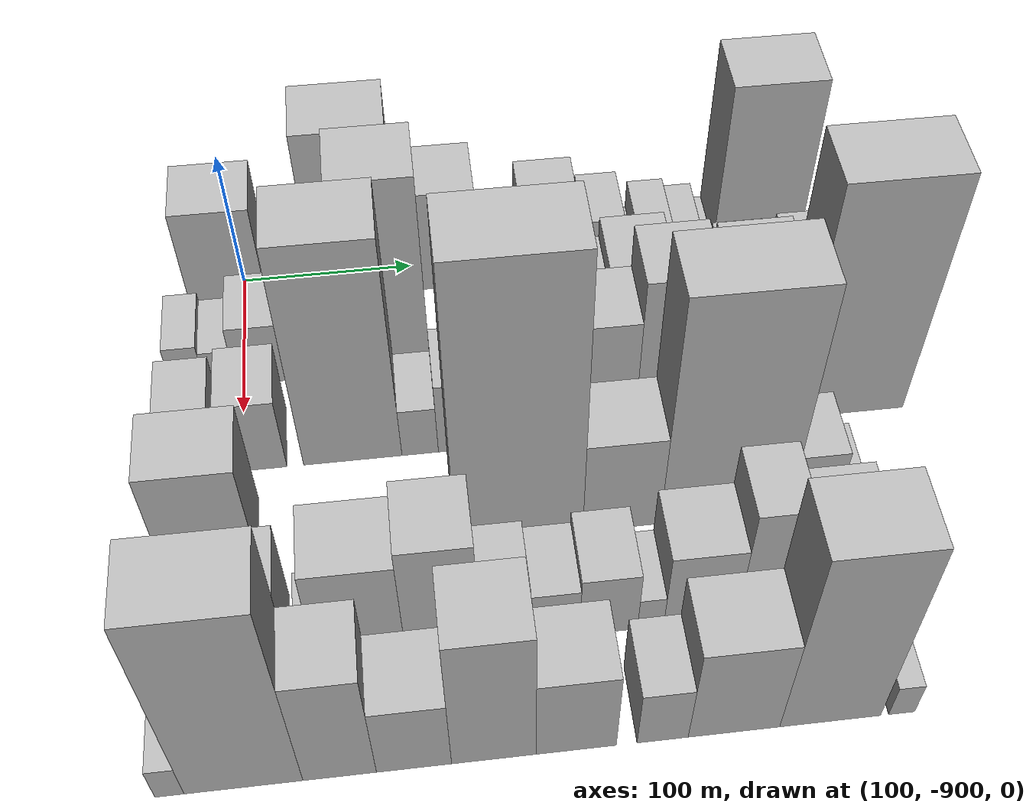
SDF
<sdf version="1.6">
 <world name="default">
  <model name="building_1">
   <static>1</static>
   <pose>100.0000 -908.6700 0 0.000000 0.000000 0.000000</pose>
   <link name="link">
    <pose>0 0 39.00 0 0 0</pose>
    <collision name="collision"><geometry><box><size>40.0000 44.6600 78.0000</size></box></geometry></collision>
    <visual name="visual">
     <cast_shadows>0</cast_shadows>
     <geometry><box><size>40.0000 44.6600 78.0000</size></box></geometry>
     <material>
      <script>
       <uri>model://HANNAS_wall/materials/scripts</uri>
       <uri>model://HANNAS_wall/materials/textures</uri>
       <name>vrc/HANNAS_wall</name>
      </script>
     </material>
    </visual>
   </link>
  </model>
  <model name="building_2">
   <static>1</static>
   <pose>100.0000 -875.1208 0 0.000000 0.000000 0.000000</pose>
   <link name="link">
    <pose>0 0 21.00 0 0 0</pose>
    <collision name="collision"><geometry><box><size>40.0000 22.4383 42.0000</size></box></geometry></collision>
    <visual name="visual">
     <cast_shadows>0</cast_shadows>
     <geometry><box><size>40.0000 22.4383 42.0000</size></box></geometry>
     <material>
      <script>
       <uri>model://HANNAS_wall/materials/scripts</uri>
       <uri>model://HANNAS_wall/materials/textures</uri>
       <name>vrc/HANNAS_wall</name>
      </script>
     </material>
    </visual>
   </link>
  </model>
  <model name="building_3">
   <static>1</static>
   <pose>100.0000 -832.2867 0 0.000000 0.000000 0.000000</pose>
   <link name="link">
    <pose>0 0 64.50 0 0 0</pose>
    <collision name="collision"><geometry><box><size>40.0000 51.2298 129.0000</size></box></geometry></collision>
    <visual name="visual">
     <cast_shadows>0</cast_shadows>
     <geometry><box><size>40.0000 51.2298 129.0000</size></box></geometry>
     <material>
      <script>
       <uri>model://HANNAS_wall/materials/scripts</uri>
       <uri>model://HANNAS_wall/materials/textures</uri>
       <name>vrc/HANNAS_wall</name>
      </script>
     </material>
    </visual>
   </link>
  </model>
  <model name="building_4">
   <static>1</static>
   <pose>100.0000 -783.7471 0 0.000000 0.000000 0.000000</pose>
   <link name="link">
    <pose>0 0 39.00 0 0 0</pose>
    <collision name="collision"><geometry><box><size>40.0000 45.8494 78.0000</size></box></geometry></collision>
    <visual name="visual">
     <cast_shadows>0</cast_shadows>
     <geometry><box><size>40.0000 45.8494 78.0000</size></box></geometry>
     <material>
      <script>
       <uri>model://HANNAS_wall/materials/scripts</uri>
       <uri>model://HANNAS_wall/materials/textures</uri>
       <name>vrc/HANNAS_wall</name>
      </script>
     </material>
    </visual>
   </link>
  </model>
  <model name="building_5">
   <static>1</static>
   <pose>100.0000 -748.8958 0 0.000000 0.000000 0.000000</pose>
   <link name="link">
    <pose>0 0 13.50 0 0 0</pose>
    <collision name="collision"><geometry><box><size>40.0000 11.8532 27.0000</size></box></geometry></collision>
    <visual name="visual">
     <cast_shadows>0</cast_shadows>
     <geometry><box><size>40.0000 11.8532 27.0000</size></box></geometry>
     <material>
      <script>
       <uri>model://HANNAS_wall/materials/scripts</uri>
       <uri>model://HANNAS_wall/materials/textures</uri>
       <name>vrc/HANNAS_wall</name>
      </script>
     </material>
    </visual>
   </link>
  </model>
  <model name="building_6">
   <static>1</static>
   <pose>100.0000 -738.8473 0 0.000000 0.000000 0.000000</pose>
   <link name="link">
    <pose>0 0 9.00 0 0 0</pose>
    <collision name="collision"><geometry><box><size>40.0000 8.2439 18.0000</size></box></geometry></collision>
    <visual name="visual">
     <cast_shadows>0</cast_shadows>
     <geometry><box><size>40.0000 8.2439 18.0000</size></box></geometry>
     <material>
      <script>
       <uri>model://HANNAS_wall/materials/scripts</uri>
       <uri>model://HANNAS_wall/materials/textures</uri>
       <name>vrc/HANNAS_wall</name>
      </script>
     </material>
    </visual>
   </link>
  </model>
  <model name="building_7">
   <static>1</static>
   <pose>100.0000 -717.7054 0 0.000000 0.000000 0.000000</pose>
   <link name="link">
    <pose>0 0 30.00 0 0 0</pose>
    <collision name="collision"><geometry><box><size>40.0000 34.0398 60.0000</size></box></geometry></collision>
    <visual name="visual">
     <cast_shadows>0</cast_shadows>
     <geometry><box><size>40.0000 34.0398 60.0000</size></box></geometry>
     <material>
      <script>
       <uri>model://HANNAS_wall/materials/scripts</uri>
       <uri>model://HANNAS_wall/materials/textures</uri>
       <name>vrc/HANNAS_wall</name>
      </script>
     </material>
    </visual>
   </link>
  </model>
  <model name="building_8">
   <static>1</static>
   <pose>100.0000 -685.4181 0 0.000000 0.000000 0.000000</pose>
   <link name="link">
    <pose>0 0 22.50 0 0 0</pose>
    <collision name="collision"><geometry><box><size>40.0000 24.5348 45.0000</size></box></geometry></collision>
    <visual name="visual">
     <cast_shadows>0</cast_shadows>
     <geometry><box><size>40.0000 24.5348 45.0000</size></box></geometry>
     <material>
      <script>
       <uri>model://HANNAS_wall/materials/scripts</uri>
       <uri>model://HANNAS_wall/materials/textures</uri>
       <name>vrc/HANNAS_wall</name>
      </script>
     </material>
    </visual>
   </link>
  </model>
  <model name="building_9">
   <static>1</static>
   <pose>100.0000 -669.4038 0 0.000000 0.000000 0.000000</pose>
   <link name="link">
    <pose>0 0 7.50 0 0 0</pose>
    <collision name="collision"><geometry><box><size>40.0000 7.4939 15.0000</size></box></geometry></collision>
    <visual name="visual">
     <cast_shadows>0</cast_shadows>
     <geometry><box><size>40.0000 7.4939 15.0000</size></box></geometry>
     <material>
      <script>
       <uri>model://HANNAS_wall/materials/scripts</uri>
       <uri>model://HANNAS_wall/materials/textures</uri>
       <name>vrc/HANNAS_wall</name>
      </script>
     </material>
    </visual>
   </link>
  </model>
  <model name="building_10">
   <static>1</static>
   <pose>100.0000 -654.9815 0 0.000000 0.000000 0.000000</pose>
   <link name="link">
    <pose>0 0 18.00 0 0 0</pose>
    <collision name="collision"><geometry><box><size>40.0000 21.3506 36.0000</size></box></geometry></collision>
    <visual name="visual">
     <cast_shadows>0</cast_shadows>
     <geometry><box><size>40.0000 21.3506 36.0000</size></box></geometry>
     <material>
      <script>
       <uri>model://HANNAS_wall/materials/scripts</uri>
       <uri>model://HANNAS_wall/materials/textures</uri>
       <name>vrc/HANNAS_wall</name>
      </script>
     </material>
    </visual>
   </link>
  </model>
  <model name="building_11">
   <static>1</static>
   <pose>100.0000 -635.4280 0 0.000000 0.000000 0.000000</pose>
   <link name="link">
    <pose>0 0 15.00 0 0 0</pose>
    <collision name="collision"><geometry><box><size>40.0000 17.7566 30.0000</size></box></geometry></collision>
    <visual name="visual">
     <cast_shadows>0</cast_shadows>
     <geometry><box><size>40.0000 17.7566 30.0000</size></box></geometry>
     <material>
      <script>
       <uri>model://HANNAS_wall/materials/scripts</uri>
       <uri>model://HANNAS_wall/materials/textures</uri>
       <name>vrc/HANNAS_wall</name>
      </script>
     </material>
    </visual>
   </link>
  </model>
  <model name="building_12">
   <static>1</static>
   <pose>100.0000 -622.7166 0 0.000000 0.000000 0.000000</pose>
   <link name="link">
    <pose>0 0 9.00 0 0 0</pose>
    <collision name="collision"><geometry><box><size>40.0000 7.6661 18.0000</size></box></geometry></collision>
    <visual name="visual">
     <cast_shadows>0</cast_shadows>
     <geometry><box><size>40.0000 7.6661 18.0000</size></box></geometry>
     <material>
      <script>
       <uri>model://HANNAS_wall/materials/scripts</uri>
       <uri>model://HANNAS_wall/materials/textures</uri>
       <name>vrc/HANNAS_wall</name>
      </script>
     </material>
    </visual>
   </link>
  </model>
  <model name="building_13">
   <static>1</static>
   <pose>100.0000 -592.4137 0 0.000000 0.000000 0.000000</pose>
   <link name="link">
    <pose>0 0 69.00 0 0 0</pose>
    <collision name="collision"><geometry><box><size>40.0000 52.9396 138.0000</size></box></geometry></collision>
    <visual name="visual">
     <cast_shadows>0</cast_shadows>
     <geometry><box><size>40.0000 52.9396 138.0000</size></box></geometry>
     <material>
      <script>
       <uri>model://HANNAS_wall/materials/scripts</uri>
       <uri>model://HANNAS_wall/materials/textures</uri>
       <name>vrc/HANNAS_wall</name>
      </script>
     </material>
    </visual>
   </link>
  </model>
  <model name="building_57">
   <static>1</static>
   <pose>160.0000 -930.6669 0 0.000000 0.000000 0.000000</pose>
   <link name="link">
    <pose>0 0 18.00 0 0 0</pose>
    <collision name="collision"><geometry><box><size>40.0000 18.6662 36.0000</size></box></geometry></collision>
    <visual name="visual">
     <cast_shadows>0</cast_shadows>
     <geometry><box><size>40.0000 18.6662 36.0000</size></box></geometry>
     <material>
      <script>
       <uri>model://HANNAS_wall/materials/scripts</uri>
       <uri>model://HANNAS_wall/materials/textures</uri>
       <name>vrc/HANNAS_wall</name>
      </script>
     </material>
    </visual>
   </link>
  </model>
  <model name="building_58">
   <static>1</static>
   <pose>160.0000 -912.6948 0 0.000000 0.000000 0.000000</pose>
   <link name="link">
    <pose>0 0 15.00 0 0 0</pose>
    <collision name="collision"><geometry><box><size>40.0000 17.2780 30.0000</size></box></geometry></collision>
    <visual name="visual">
     <cast_shadows>0</cast_shadows>
     <geometry><box><size>40.0000 17.2780 30.0000</size></box></geometry>
     <material>
      <script>
       <uri>model://HANNAS_wall/materials/scripts</uri>
       <uri>model://HANNAS_wall/materials/textures</uri>
       <name>vrc/HANNAS_wall</name>
      </script>
     </material>
    </visual>
   </link>
  </model>
  <model name="building_59">
   <static>1</static>
   <pose>160.0000 -889.8116 0 0.000000 0.000000 0.000000</pose>
   <link name="link">
    <pose>0 0 24.00 0 0 0</pose>
    <collision name="collision"><geometry><box><size>40.0000 28.4884 48.0000</size></box></geometry></collision>
    <visual name="visual">
     <cast_shadows>0</cast_shadows>
     <geometry><box><size>40.0000 28.4884 48.0000</size></box></geometry>
     <material>
      <script>
       <uri>model://HANNAS_wall/materials/scripts</uri>
       <uri>model://HANNAS_wall/materials/textures</uri>
       <name>vrc/HANNAS_wall</name>
      </script>
     </material>
    </visual>
   </link>
  </model>
  <model name="building_60">
   <static>1</static>
   <pose>160.0000 -862.2313 0 0.000000 0.000000 0.000000</pose>
   <link name="link">
    <pose>0 0 22.50 0 0 0</pose>
    <collision name="collision"><geometry><box><size>40.0000 26.6723 45.0000</size></box></geometry></collision>
    <visual name="visual">
     <cast_shadows>0</cast_shadows>
     <geometry><box><size>40.0000 26.6723 45.0000</size></box></geometry>
     <material>
      <script>
       <uri>model://HANNAS_wall/materials/scripts</uri>
       <uri>model://HANNAS_wall/materials/textures</uri>
       <name>vrc/HANNAS_wall</name>
      </script>
     </material>
    </visual>
   </link>
  </model>
  <model name="building_61">
   <static>1</static>
   <pose>160.0000 -816.3578 0 0.000000 0.000000 0.000000</pose>
   <link name="link">
    <pose>0 0 75.00 0 0 0</pose>
    <collision name="collision"><geometry><box><size>40.0000 45.0746 150.0000</size></box></geometry></collision>
    <visual name="visual">
     <cast_shadows>0</cast_shadows>
     <geometry><box><size>40.0000 45.0746 150.0000</size></box></geometry>
     <material>
      <script>
       <uri>model://HANNAS_wall/materials/scripts</uri>
       <uri>model://HANNAS_wall/materials/textures</uri>
       <name>vrc/HANNAS_wall</name>
      </script>
     </material>
    </visual>
   </link>
  </model>
  <model name="building_62">
   <static>1</static>
   <pose>160.0000 -708.0159 0 0.000000 0.000000 0.000000</pose>
   <link name="link">
    <pose>0 0 27.00 0 0 0</pose>
    <collision name="collision"><geometry><box><size>40.0000 31.2031 54.0000</size></box></geometry></collision>
    <visual name="visual">
     <cast_shadows>0</cast_shadows>
     <geometry><box><size>40.0000 31.2031 54.0000</size></box></geometry>
     <material>
      <script>
       <uri>model://HANNAS_wall/materials/scripts</uri>
       <uri>model://HANNAS_wall/materials/textures</uri>
       <name>vrc/HANNAS_wall</name>
      </script>
     </material>
    </visual>
   </link>
  </model>
  <model name="building_63">
   <static>1</static>
   <pose>160.0000 -674.2257 0 0.000000 0.000000 0.000000</pose>
   <link name="link">
    <pose>0 0 34.50 0 0 0</pose>
    <collision name="collision"><geometry><box><size>40.0000 36.3771 69.0000</size></box></geometry></collision>
    <visual name="visual">
     <cast_shadows>0</cast_shadows>
     <geometry><box><size>40.0000 36.3771 69.0000</size></box></geometry>
     <material>
      <script>
       <uri>model://HANNAS_wall/materials/scripts</uri>
       <uri>model://HANNAS_wall/materials/textures</uri>
       <name>vrc/HANNAS_wall</name>
      </script>
     </material>
    </visual>
   </link>
  </model>
  <model name="building_64">
   <static>1</static>
   <pose>160.0000 -641.6457 0 0.000000 0.000000 0.000000</pose>
   <link name="link">
    <pose>0 0 24.00 0 0 0</pose>
    <collision name="collision"><geometry><box><size>40.0000 28.7830 48.0000</size></box></geometry></collision>
    <visual name="visual">
     <cast_shadows>0</cast_shadows>
     <geometry><box><size>40.0000 28.7830 48.0000</size></box></geometry>
     <material>
      <script>
       <uri>model://HANNAS_wall/materials/scripts</uri>
       <uri>model://HANNAS_wall/materials/textures</uri>
       <name>vrc/HANNAS_wall</name>
      </script>
     </material>
    </visual>
   </link>
  </model>
  <model name="building_65">
   <static>1</static>
   <pose>160.0000 -612.8412 0 0.000000 0.000000 0.000000</pose>
   <link name="link">
    <pose>0 0 28.50 0 0 0</pose>
    <collision name="collision"><geometry><box><size>40.0000 28.8260 57.0000</size></box></geometry></collision>
    <visual name="visual">
     <cast_shadows>0</cast_shadows>
     <geometry><box><size>40.0000 28.8260 57.0000</size></box></geometry>
     <material>
      <script>
       <uri>model://HANNAS_wall/materials/scripts</uri>
       <uri>model://HANNAS_wall/materials/textures</uri>
       <name>vrc/HANNAS_wall</name>
      </script>
     </material>
    </visual>
   </link>
  </model>
  <model name="building_66">
   <static>1</static>
   <pose>160.0000 -574.5521 0 0.000000 0.000000 0.000000</pose>
   <link name="link">
    <pose>0 0 30.00 0 0 0</pose>
    <collision name="collision"><geometry><box><size>40.0000 31.7522 60.0000</size></box></geometry></collision>
    <visual name="visual">
     <cast_shadows>0</cast_shadows>
     <geometry><box><size>40.0000 31.7522 60.0000</size></box></geometry>
     <material>
      <script>
       <uri>model://HANNAS_wall/materials/scripts</uri>
       <uri>model://HANNAS_wall/materials/textures</uri>
       <name>vrc/HANNAS_wall</name>
      </script>
     </material>
    </visual>
   </link>
  </model>
  <model name="building_110">
   <static>1</static>
   <pose>220.0000 -925.8809 0 0.000000 0.000000 0.000000</pose>
   <link name="link">
    <pose>0 0 25.50 0 0 0</pose>
    <collision name="collision"><geometry><box><size>40.0000 28.2381 51.0000</size></box></geometry></collision>
    <visual name="visual">
     <cast_shadows>0</cast_shadows>
     <geometry><box><size>40.0000 28.2381 51.0000</size></box></geometry>
     <material>
      <script>
       <uri>model://HANNAS_wall/materials/scripts</uri>
       <uri>model://HANNAS_wall/materials/textures</uri>
       <name>vrc/HANNAS_wall</name>
      </script>
     </material>
    </visual>
   </link>
  </model>
  <model name="building_111">
   <static>1</static>
   <pose>220.0000 -892.1208 0 0.000000 0.000000 0.000000</pose>
   <link name="link">
    <pose>0 0 28.50 0 0 0</pose>
    <collision name="collision"><geometry><box><size>40.0000 31.2821 57.0000</size></box></geometry></collision>
    <visual name="visual">
     <cast_shadows>0</cast_shadows>
     <geometry><box><size>40.0000 31.2821 57.0000</size></box></geometry>
     <material>
      <script>
       <uri>model://HANNAS_wall/materials/scripts</uri>
       <uri>model://HANNAS_wall/materials/textures</uri>
       <name>vrc/HANNAS_wall</name>
      </script>
     </material>
    </visual>
   </link>
  </model>
  <model name="building_112">
   <static>1</static>
   <pose>220.0000 -840.7045 0 0.000000 0.000000 0.000000</pose>
   <link name="link">
    <pose>0 0 85.50 0 0 0</pose>
    <collision name="collision"><geometry><box><size>40.0000 53.5505 171.0000</size></box></geometry></collision>
    <visual name="visual">
     <cast_shadows>0</cast_shadows>
     <geometry><box><size>40.0000 53.5505 171.0000</size></box></geometry>
     <material>
      <script>
       <uri>model://HANNAS_wall/materials/scripts</uri>
       <uri>model://HANNAS_wall/materials/textures</uri>
       <name>vrc/HANNAS_wall</name>
      </script>
     </material>
    </visual>
   </link>
  </model>
  <model name="building_113">
   <static>1</static>
   <pose>220.0000 -803.9248 0 0.000000 0.000000 0.000000</pose>
   <link name="link">
    <pose>0 0 19.50 0 0 0</pose>
    <collision name="collision"><geometry><box><size>40.0000 20.0090 39.0000</size></box></geometry></collision>
    <visual name="visual">
     <cast_shadows>0</cast_shadows>
     <geometry><box><size>40.0000 20.0090 39.0000</size></box></geometry>
     <material>
      <script>
       <uri>model://HANNAS_wall/materials/scripts</uri>
       <uri>model://HANNAS_wall/materials/textures</uri>
       <name>vrc/HANNAS_wall</name>
      </script>
     </material>
    </visual>
   </link>
  </model>
  <model name="building_114">
   <static>1</static>
   <pose>220.0000 -777.6790 0 0.000000 0.000000 0.000000</pose>
   <link name="link">
    <pose>0 0 28.50 0 0 0</pose>
    <collision name="collision"><geometry><box><size>40.0000 32.4825 57.0000</size></box></geometry></collision>
    <visual name="visual">
     <cast_shadows>0</cast_shadows>
     <geometry><box><size>40.0000 32.4825 57.0000</size></box></geometry>
     <material>
      <script>
       <uri>model://HANNAS_wall/materials/scripts</uri>
       <uri>model://HANNAS_wall/materials/textures</uri>
       <name>vrc/HANNAS_wall</name>
      </script>
     </material>
    </visual>
   </link>
  </model>
  <model name="building_115">
   <static>1</static>
   <pose>220.0000 -746.5024 0 0.000000 0.000000 0.000000</pose>
   <link name="link">
    <pose>0 0 21.00 0 0 0</pose>
    <collision name="collision"><geometry><box><size>40.0000 23.8708 42.0000</size></box></geometry></collision>
    <visual name="visual">
     <cast_shadows>0</cast_shadows>
     <geometry><box><size>40.0000 23.8708 42.0000</size></box></geometry>
     <material>
      <script>
       <uri>model://HANNAS_wall/materials/scripts</uri>
       <uri>model://HANNAS_wall/materials/textures</uri>
       <name>vrc/HANNAS_wall</name>
      </script>
     </material>
    </visual>
   </link>
  </model>
  <model name="building_116">
   <static>1</static>
   <pose>220.0000 -729.7341 0 0.000000 0.000000 0.000000</pose>
   <link name="link">
    <pose>0 0 10.50 0 0 0</pose>
    <collision name="collision"><geometry><box><size>40.0000 9.6658 21.0000</size></box></geometry></collision>
    <visual name="visual">
     <cast_shadows>0</cast_shadows>
     <geometry><box><size>40.0000 9.6658 21.0000</size></box></geometry>
     <material>
      <script>
       <uri>model://HANNAS_wall/materials/scripts</uri>
       <uri>model://HANNAS_wall/materials/textures</uri>
       <name>vrc/HANNAS_wall</name>
      </script>
     </material>
    </visual>
   </link>
  </model>
  <model name="building_117">
   <static>1</static>
   <pose>220.0000 -721.8791 0 0.000000 0.000000 0.000000</pose>
   <link name="link">
    <pose>0 0 7.50 0 0 0</pose>
    <collision name="collision"><geometry><box><size>40.0000 6.0443 15.0000</size></box></geometry></collision>
    <visual name="visual">
     <cast_shadows>0</cast_shadows>
     <geometry><box><size>40.0000 6.0443 15.0000</size></box></geometry>
     <material>
      <script>
       <uri>model://HANNAS_wall/materials/scripts</uri>
       <uri>model://HANNAS_wall/materials/textures</uri>
       <name>vrc/HANNAS_wall</name>
      </script>
     </material>
    </visual>
   </link>
  </model>
  <model name="building_118">
   <static>1</static>
   <pose>220.0000 -702.1826 0 0.000000 0.000000 0.000000</pose>
   <link name="link">
    <pose>0 0 46.50 0 0 0</pose>
    <collision name="collision"><geometry><box><size>40.0000 33.3488 93.0000</size></box></geometry></collision>
    <visual name="visual">
     <cast_shadows>0</cast_shadows>
     <geometry><box><size>40.0000 33.3488 93.0000</size></box></geometry>
     <material>
      <script>
       <uri>model://HANNAS_wall/materials/scripts</uri>
       <uri>model://HANNAS_wall/materials/textures</uri>
       <name>vrc/HANNAS_wall</name>
      </script>
     </material>
    </visual>
   </link>
  </model>
  <model name="building_119">
   <static>1</static>
   <pose>220.0000 -666.2102 0 0.000000 0.000000 0.000000</pose>
   <link name="link">
    <pose>0 0 61.50 0 0 0</pose>
    <collision name="collision"><geometry><box><size>40.0000 38.5959 123.0000</size></box></geometry></collision>
    <visual name="visual">
     <cast_shadows>0</cast_shadows>
     <geometry><box><size>40.0000 38.5959 123.0000</size></box></geometry>
     <material>
      <script>
       <uri>model://HANNAS_wall/materials/scripts</uri>
       <uri>model://HANNAS_wall/materials/textures</uri>
       <name>vrc/HANNAS_wall</name>
      </script>
     </material>
    </visual>
   </link>
  </model>
  <model name="building_120">
   <static>1</static>
   <pose>220.0000 -623.3349 0 0.000000 0.000000 0.000000</pose>
   <link name="link">
    <pose>0 0 60.00 0 0 0</pose>
    <collision name="collision"><geometry><box><size>40.0000 39.1547 120.0000</size></box></geometry></collision>
    <visual name="visual">
     <cast_shadows>0</cast_shadows>
     <geometry><box><size>40.0000 39.1547 120.0000</size></box></geometry>
     <material>
      <script>
       <uri>model://HANNAS_wall/materials/scripts</uri>
       <uri>model://HANNAS_wall/materials/textures</uri>
       <name>vrc/HANNAS_wall</name>
      </script>
     </material>
    </visual>
   </link>
  </model>
  <model name="building_121">
   <static>1</static>
   <pose>220.0000 -599.9486 0 0.000000 0.000000 0.000000</pose>
   <link name="link">
    <pose>0 0 9.00 0 0 0</pose>
    <collision name="collision"><geometry><box><size>40.0000 7.6180 18.0000</size></box></geometry></collision>
    <visual name="visual">
     <cast_shadows>0</cast_shadows>
     <geometry><box><size>40.0000 7.6180 18.0000</size></box></geometry>
     <material>
      <script>
       <uri>model://HANNAS_wall/materials/scripts</uri>
       <uri>model://HANNAS_wall/materials/textures</uri>
       <name>vrc/HANNAS_wall</name>
      </script>
     </material>
    </visual>
   </link>
  </model>
  <model name="building_122">
   <static>1</static>
   <pose>220.0000 -564.5007 0 0.000000 0.000000 0.000000</pose>
   <link name="link">
    <pose>0 0 90.00 0 0 0</pose>
    <collision name="collision"><geometry><box><size>40.0000 63.2778 180.0000</size></box></geometry></collision>
    <visual name="visual">
     <cast_shadows>0</cast_shadows>
     <geometry><box><size>40.0000 63.2778 180.0000</size></box></geometry>
     <material>
      <script>
       <uri>model://HANNAS_wall/materials/scripts</uri>
       <uri>model://HANNAS_wall/materials/textures</uri>
       <name>vrc/HANNAS_wall</name>
      </script>
     </material>
    </visual>
   </link>
  </model>
  <model name="building_162">
   <static>1</static>
   <pose>280.0000 -915.8459 0 0.000000 0.000000 0.000000</pose>
   <link name="link">
    <pose>0 0 42.00 0 0 0</pose>
    <collision name="collision"><geometry><box><size>40.0000 48.3081 84.0000</size></box></geometry></collision>
    <visual name="visual">
     <cast_shadows>0</cast_shadows>
     <geometry><box><size>40.0000 48.3081 84.0000</size></box></geometry>
     <material>
      <script>
       <uri>model://HANNAS_wall/materials/scripts</uri>
       <uri>model://HANNAS_wall/materials/textures</uri>
       <name>vrc/HANNAS_wall</name>
      </script>
     </material>
    </visual>
   </link>
  </model>
  <model name="building_163">
   <static>1</static>
   <pose>280.0000 -756.0601 0 0.000000 0.000000 0.000000</pose>
   <link name="link">
    <pose>0 0 108.00 0 0 0</pose>
    <collision name="collision"><geometry><box><size>40.0000 67.0879 216.0000</size></box></geometry></collision>
    <visual name="visual">
     <cast_shadows>0</cast_shadows>
     <geometry><box><size>40.0000 67.0879 216.0000</size></box></geometry>
     <material>
      <script>
       <uri>model://HANNAS_wall/materials/scripts</uri>
       <uri>model://HANNAS_wall/materials/textures</uri>
       <name>vrc/HANNAS_wall</name>
      </script>
     </material>
    </visual>
   </link>
  </model>
  <model name="building_164">
   <static>1</static>
   <pose>280.0000 -701.9071 0 0.000000 0.000000 0.000000</pose>
   <link name="link">
    <pose>0 0 37.50 0 0 0</pose>
    <collision name="collision"><geometry><box><size>40.0000 41.2180 75.0000</size></box></geometry></collision>
    <visual name="visual">
     <cast_shadows>0</cast_shadows>
     <geometry><box><size>40.0000 41.2180 75.0000</size></box></geometry>
     <material>
      <script>
       <uri>model://HANNAS_wall/materials/scripts</uri>
       <uri>model://HANNAS_wall/materials/textures</uri>
       <name>vrc/HANNAS_wall</name>
      </script>
     </material>
    </visual>
   </link>
  </model>
  <model name="building_165">
   <static>1</static>
   <pose>280.0000 -646.6868 0 0.000000 0.000000 0.000000</pose>
   <link name="link">
    <pose>0 0 90.00 0 0 0</pose>
    <collision name="collision"><geometry><box><size>40.0000 69.2227 180.0000</size></box></geometry></collision>
    <visual name="visual">
     <cast_shadows>0</cast_shadows>
     <geometry><box><size>40.0000 69.2227 180.0000</size></box></geometry>
     <material>
      <script>
       <uri>model://HANNAS_wall/materials/scripts</uri>
       <uri>model://HANNAS_wall/materials/textures</uri>
       <name>vrc/HANNAS_wall</name>
      </script>
     </material>
    </visual>
   </link>
  </model>
  <model name="building_166">
   <static>1</static>
   <pose>280.0000 -598.8504 0 0.000000 0.000000 0.000000</pose>
   <link name="link">
    <pose>0 0 24.00 0 0 0</pose>
    <collision name="collision"><geometry><box><size>40.0000 26.4501 48.0000</size></box></geometry></collision>
    <visual name="visual">
     <cast_shadows>0</cast_shadows>
     <geometry><box><size>40.0000 26.4501 48.0000</size></box></geometry>
     <material>
      <script>
       <uri>model://HANNAS_wall/materials/scripts</uri>
       <uri>model://HANNAS_wall/materials/textures</uri>
       <name>vrc/HANNAS_wall</name>
      </script>
     </material>
    </visual>
   </link>
  </model>
  <model name="building_167">
   <static>1</static>
   <pose>280.0000 -575.8578 0 0.000000 0.000000 0.000000</pose>
   <link name="link">
    <pose>0 0 9.00 0 0 0</pose>
    <collision name="collision"><geometry><box><size>40.0000 7.5350 18.0000</size></box></geometry></collision>
    <visual name="visual">
     <cast_shadows>0</cast_shadows>
     <geometry><box><size>40.0000 7.5350 18.0000</size></box></geometry>
     <material>
      <script>
       <uri>model://HANNAS_wall/materials/scripts</uri>
       <uri>model://HANNAS_wall/materials/textures</uri>
       <name>vrc/HANNAS_wall</name>
      </script>
     </material>
    </visual>
   </link>
  </model>
  <model name="building_212">
   <static>1</static>
   <pose>340.0000 -927.6109 0 0.000000 0.000000 0.000000</pose>
   <link name="link">
    <pose>0 0 21.00 0 0 0</pose>
    <collision name="collision"><geometry><box><size>40.0000 24.7783 42.0000</size></box></geometry></collision>
    <visual name="visual">
     <cast_shadows>0</cast_shadows>
     <geometry><box><size>40.0000 24.7783 42.0000</size></box></geometry>
     <material>
      <script>
       <uri>model://HANNAS_wall/materials/scripts</uri>
       <uri>model://HANNAS_wall/materials/textures</uri>
       <name>vrc/HANNAS_wall</name>
      </script>
     </material>
    </visual>
   </link>
  </model>
  <model name="building_213">
   <static>1</static>
   <pose>340.0000 -895.8956 0 0.000000 0.000000 0.000000</pose>
   <link name="link">
    <pose>0 0 33.00 0 0 0</pose>
    <collision name="collision"><geometry><box><size>40.0000 38.6522 66.0000</size></box></geometry></collision>
    <visual name="visual">
     <cast_shadows>0</cast_shadows>
     <geometry><box><size>40.0000 38.6522 66.0000</size></box></geometry>
     <material>
      <script>
       <uri>model://HANNAS_wall/materials/scripts</uri>
       <uri>model://HANNAS_wall/materials/textures</uri>
       <name>vrc/HANNAS_wall</name>
      </script>
     </material>
    </visual>
   </link>
  </model>
  <model name="building_214">
   <static>1</static>
   <pose>340.0000 -868.2247 0 0.000000 0.000000 0.000000</pose>
   <link name="link">
    <pose>0 0 10.50 0 0 0</pose>
    <collision name="collision"><geometry><box><size>40.0000 8.6897 21.0000</size></box></geometry></collision>
    <visual name="visual">
     <cast_shadows>0</cast_shadows>
     <geometry><box><size>40.0000 8.6897 21.0000</size></box></geometry>
     <material>
      <script>
       <uri>model://HANNAS_wall/materials/scripts</uri>
       <uri>model://HANNAS_wall/materials/textures</uri>
       <name>vrc/HANNAS_wall</name>
      </script>
     </material>
    </visual>
   </link>
  </model>
  <model name="building_215">
   <static>1</static>
   <pose>340.0000 -841.6962 0 0.000000 0.000000 0.000000</pose>
   <link name="link">
    <pose>0 0 40.50 0 0 0</pose>
    <collision name="collision"><geometry><box><size>40.0000 44.3672 81.0000</size></box></geometry></collision>
    <visual name="visual">
     <cast_shadows>0</cast_shadows>
     <geometry><box><size>40.0000 44.3672 81.0000</size></box></geometry>
     <material>
      <script>
       <uri>model://HANNAS_wall/materials/scripts</uri>
       <uri>model://HANNAS_wall/materials/textures</uri>
       <name>vrc/HANNAS_wall</name>
      </script>
     </material>
    </visual>
   </link>
  </model>
  <model name="building_216">
   <static>1</static>
   <pose>340.0000 -801.1854 0 0.000000 0.000000 0.000000</pose>
   <link name="link">
    <pose>0 0 46.50 0 0 0</pose>
    <collision name="collision"><geometry><box><size>40.0000 36.6544 93.0000</size></box></geometry></collision>
    <visual name="visual">
     <cast_shadows>0</cast_shadows>
     <geometry><box><size>40.0000 36.6544 93.0000</size></box></geometry>
     <material>
      <script>
       <uri>model://HANNAS_wall/materials/scripts</uri>
       <uri>model://HANNAS_wall/materials/textures</uri>
       <name>vrc/HANNAS_wall</name>
      </script>
     </material>
    </visual>
   </link>
  </model>
  <model name="building_217">
   <static>1</static>
   <pose>340.0000 -769.9643 0 0.000000 0.000000 0.000000</pose>
   <link name="link">
    <pose>0 0 24.00 0 0 0</pose>
    <collision name="collision"><geometry><box><size>40.0000 25.7878 48.0000</size></box></geometry></collision>
    <visual name="visual">
     <cast_shadows>0</cast_shadows>
     <geometry><box><size>40.0000 25.7878 48.0000</size></box></geometry>
     <material>
      <script>
       <uri>model://HANNAS_wall/materials/scripts</uri>
       <uri>model://HANNAS_wall/materials/textures</uri>
       <name>vrc/HANNAS_wall</name>
      </script>
     </material>
    </visual>
   </link>
  </model>
  <model name="building_218">
   <static>1</static>
   <pose>340.0000 -744.8256 0 0.000000 0.000000 0.000000</pose>
   <link name="link">
    <pose>0 0 21.00 0 0 0</pose>
    <collision name="collision"><geometry><box><size>40.0000 24.4896 42.0000</size></box></geometry></collision>
    <visual name="visual">
     <cast_shadows>0</cast_shadows>
     <geometry><box><size>40.0000 24.4896 42.0000</size></box></geometry>
     <material>
      <script>
       <uri>model://HANNAS_wall/materials/scripts</uri>
       <uri>model://HANNAS_wall/materials/textures</uri>
       <name>vrc/HANNAS_wall</name>
      </script>
     </material>
    </visual>
   </link>
  </model>
  <model name="building_219">
   <static>1</static>
   <pose>340.0000 -717.9530 0 0.000000 0.000000 0.000000</pose>
   <link name="link">
    <pose>0 0 25.50 0 0 0</pose>
    <collision name="collision"><geometry><box><size>40.0000 29.2556 51.0000</size></box></geometry></collision>
    <visual name="visual">
     <cast_shadows>0</cast_shadows>
     <geometry><box><size>40.0000 29.2556 51.0000</size></box></geometry>
     <material>
      <script>
       <uri>model://HANNAS_wall/materials/scripts</uri>
       <uri>model://HANNAS_wall/materials/textures</uri>
       <name>vrc/HANNAS_wall</name>
      </script>
     </material>
    </visual>
   </link>
  </model>
  <model name="building_220">
   <static>1</static>
   <pose>340.0000 -696.6669 0 0.000000 0.000000 0.000000</pose>
   <link name="link">
    <pose>0 0 13.50 0 0 0</pose>
    <collision name="collision"><geometry><box><size>40.0000 13.3168 27.0000</size></box></geometry></collision>
    <visual name="visual">
     <cast_shadows>0</cast_shadows>
     <geometry><box><size>40.0000 13.3168 27.0000</size></box></geometry>
     <material>
      <script>
       <uri>model://HANNAS_wall/materials/scripts</uri>
       <uri>model://HANNAS_wall/materials/textures</uri>
       <name>vrc/HANNAS_wall</name>
      </script>
     </material>
    </visual>
   </link>
  </model>
  <model name="building_221">
   <static>1</static>
   <pose>340.0000 -671.3072 0 0.000000 0.000000 0.000000</pose>
   <link name="link">
    <pose>0 0 31.50 0 0 0</pose>
    <collision name="collision"><geometry><box><size>40.0000 37.4026 63.0000</size></box></geometry></collision>
    <visual name="visual">
     <cast_shadows>0</cast_shadows>
     <geometry><box><size>40.0000 37.4026 63.0000</size></box></geometry>
     <material>
      <script>
       <uri>model://HANNAS_wall/materials/scripts</uri>
       <uri>model://HANNAS_wall/materials/textures</uri>
       <name>vrc/HANNAS_wall</name>
      </script>
     </material>
    </visual>
   </link>
  </model>
  <model name="building_222">
   <static>1</static>
   <pose>340.0000 -638.3589 0 0.000000 0.000000 0.000000</pose>
   <link name="link">
    <pose>0 0 46.50 0 0 0</pose>
    <collision name="collision"><geometry><box><size>40.0000 28.4939 93.0000</size></box></geometry></collision>
    <visual name="visual">
     <cast_shadows>0</cast_shadows>
     <geometry><box><size>40.0000 28.4939 93.0000</size></box></geometry>
     <material>
      <script>
       <uri>model://HANNAS_wall/materials/scripts</uri>
       <uri>model://HANNAS_wall/materials/textures</uri>
       <name>vrc/HANNAS_wall</name>
      </script>
     </material>
    </visual>
   </link>
  </model>
  <model name="building_223">
   <static>1</static>
   <pose>340.0000 -603.5455 0 0.000000 0.000000 0.000000</pose>
   <link name="link">
    <pose>0 0 34.50 0 0 0</pose>
    <collision name="collision"><geometry><box><size>40.0000 41.1328 69.0000</size></box></geometry></collision>
    <visual name="visual">
     <cast_shadows>0</cast_shadows>
     <geometry><box><size>40.0000 41.1328 69.0000</size></box></geometry>
     <material>
      <script>
       <uri>model://HANNAS_wall/materials/scripts</uri>
       <uri>model://HANNAS_wall/materials/textures</uri>
       <name>vrc/HANNAS_wall</name>
      </script>
     </material>
    </visual>
   </link>
  </model>
  <model name="building_224">
   <static>1</static>
   <pose>340.0000 -571.6415 0 0.000000 0.000000 0.000000</pose>
   <link name="link">
    <pose>0 0 19.50 0 0 0</pose>
    <collision name="collision"><geometry><box><size>40.0000 22.6751 39.0000</size></box></geometry></collision>
    <visual name="visual">
     <cast_shadows>0</cast_shadows>
     <geometry><box><size>40.0000 22.6751 39.0000</size></box></geometry>
     <material>
      <script>
       <uri>model://HANNAS_wall/materials/scripts</uri>
       <uri>model://HANNAS_wall/materials/textures</uri>
       <name>vrc/HANNAS_wall</name>
      </script>
     </material>
    </visual>
   </link>
  </model>
  <model name="building_267">
   <static>1</static>
   <pose>400.0000 -933.2940 0 0.000000 0.000000 0.000000</pose>
   <link name="link">
    <pose>0 0 13.50 0 0 0</pose>
    <collision name="collision"><geometry><box><size>40.0000 13.4120 27.0000</size></box></geometry></collision>
    <visual name="visual">
     <cast_shadows>0</cast_shadows>
     <geometry><box><size>40.0000 13.4120 27.0000</size></box></geometry>
     <material>
      <script>
       <uri>model://HANNAS_wall/materials/scripts</uri>
       <uri>model://HANNAS_wall/materials/textures</uri>
       <name>vrc/HANNAS_wall</name>
      </script>
     </material>
    </visual>
   </link>
  </model>
  <model name="building_268">
   <static>1</static>
   <pose>400.0000 -899.0793 0 0.000000 0.000000 0.000000</pose>
   <link name="link">
    <pose>0 0 79.50 0 0 0</pose>
    <collision name="collision"><geometry><box><size>40.0000 55.0174 159.0000</size></box></geometry></collision>
    <visual name="visual">
     <cast_shadows>0</cast_shadows>
     <geometry><box><size>40.0000 55.0174 159.0000</size></box></geometry>
     <material>
      <script>
       <uri>model://HANNAS_wall/materials/scripts</uri>
       <uri>model://HANNAS_wall/materials/textures</uri>
       <name>vrc/HANNAS_wall</name>
      </script>
     </material>
    </visual>
   </link>
  </model>
  <model name="building_269">
   <static>1</static>
   <pose>400.0000 -854.3866 0 0.000000 0.000000 0.000000</pose>
   <link name="link">
    <pose>0 0 46.50 0 0 0</pose>
    <collision name="collision"><geometry><box><size>40.0000 34.3680 93.0000</size></box></geometry></collision>
    <visual name="visual">
     <cast_shadows>0</cast_shadows>
     <geometry><box><size>40.0000 34.3680 93.0000</size></box></geometry>
     <material>
      <script>
       <uri>model://HANNAS_wall/materials/scripts</uri>
       <uri>model://HANNAS_wall/materials/textures</uri>
       <name>vrc/HANNAS_wall</name>
      </script>
     </material>
    </visual>
   </link>
  </model>
  <model name="building_270">
   <static>1</static>
   <pose>400.0000 -819.5145 0 0.000000 0.000000 0.000000</pose>
   <link name="link">
    <pose>0 0 30.00 0 0 0</pose>
    <collision name="collision"><geometry><box><size>40.0000 35.3761 60.0000</size></box></geometry></collision>
    <visual name="visual">
     <cast_shadows>0</cast_shadows>
     <geometry><box><size>40.0000 35.3761 60.0000</size></box></geometry>
     <material>
      <script>
       <uri>model://HANNAS_wall/materials/scripts</uri>
       <uri>model://HANNAS_wall/materials/textures</uri>
       <name>vrc/HANNAS_wall</name>
      </script>
     </material>
    </visual>
   </link>
  </model>
  <model name="building_271">
   <static>1</static>
   <pose>400.0000 -781.7392 0 0.000000 0.000000 0.000000</pose>
   <link name="link">
    <pose>0 0 57.00 0 0 0</pose>
    <collision name="collision"><geometry><box><size>40.0000 40.1746 114.0000</size></box></geometry></collision>
    <visual name="visual">
     <cast_shadows>0</cast_shadows>
     <geometry><box><size>40.0000 40.1746 114.0000</size></box></geometry>
     <material>
      <script>
       <uri>model://HANNAS_wall/materials/scripts</uri>
       <uri>model://HANNAS_wall/materials/textures</uri>
       <name>vrc/HANNAS_wall</name>
      </script>
     </material>
    </visual>
   </link>
  </model>
  <model name="building_272">
   <static>1</static>
   <pose>400.0000 -742.5106 0 0.000000 0.000000 0.000000</pose>
   <link name="link">
    <pose>0 0 34.50 0 0 0</pose>
    <collision name="collision"><geometry><box><size>40.0000 38.2825 69.0000</size></box></geometry></collision>
    <visual name="visual">
     <cast_shadows>0</cast_shadows>
     <geometry><box><size>40.0000 38.2825 69.0000</size></box></geometry>
     <material>
      <script>
       <uri>model://HANNAS_wall/materials/scripts</uri>
       <uri>model://HANNAS_wall/materials/textures</uri>
       <name>vrc/HANNAS_wall</name>
      </script>
     </material>
    </visual>
   </link>
  </model>
  <model name="building_273">
   <static>1</static>
   <pose>400.0000 -701.0282 0 0.000000 0.000000 0.000000</pose>
   <link name="link">
    <pose>0 0 24.00 0 0 0</pose>
    <collision name="collision"><geometry><box><size>40.0000 24.6823 48.0000</size></box></geometry></collision>
    <visual name="visual">
     <cast_shadows>0</cast_shadows>
     <geometry><box><size>40.0000 24.6823 48.0000</size></box></geometry>
     <material>
      <script>
       <uri>model://HANNAS_wall/materials/scripts</uri>
       <uri>model://HANNAS_wall/materials/textures</uri>
       <name>vrc/HANNAS_wall</name>
      </script>
     </material>
    </visual>
   </link>
  </model>
  <model name="building_274">
   <static>1</static>
   <pose>400.0000 -666.4280 0 0.000000 0.000000 0.000000</pose>
   <link name="link">
    <pose>0 0 40.50 0 0 0</pose>
    <collision name="collision"><geometry><box><size>40.0000 44.5182 81.0000</size></box></geometry></collision>
    <visual name="visual">
     <cast_shadows>0</cast_shadows>
     <geometry><box><size>40.0000 44.5182 81.0000</size></box></geometry>
     <material>
      <script>
       <uri>model://HANNAS_wall/materials/scripts</uri>
       <uri>model://HANNAS_wall/materials/textures</uri>
       <name>vrc/HANNAS_wall</name>
      </script>
     </material>
    </visual>
   </link>
  </model>
  <model name="building_275">
   <static>1</static>
   <pose>400.0000 -619.3869 0 0.000000 0.000000 0.000000</pose>
   <link name="link">
    <pose>0 0 76.50 0 0 0</pose>
    <collision name="collision"><geometry><box><size>40.0000 49.5640 153.0000</size></box></geometry></collision>
    <visual name="visual">
     <cast_shadows>0</cast_shadows>
     <geometry><box><size>40.0000 49.5640 153.0000</size></box></geometry>
     <material>
      <script>
       <uri>model://HANNAS_wall/materials/scripts</uri>
       <uri>model://HANNAS_wall/materials/textures</uri>
       <name>vrc/HANNAS_wall</name>
      </script>
     </material>
    </visual>
   </link>
  </model>
  <model name="building_276">
   <static>1</static>
   <pose>400.0000 -584.1731 0 0.000000 0.000000 0.000000</pose>
   <link name="link">
    <pose>0 0 13.50 0 0 0</pose>
    <collision name="collision"><geometry><box><size>40.0000 12.8635 27.0000</size></box></geometry></collision>
    <visual name="visual">
     <cast_shadows>0</cast_shadows>
     <geometry><box><size>40.0000 12.8635 27.0000</size></box></geometry>
     <material>
      <script>
       <uri>model://HANNAS_wall/materials/scripts</uri>
       <uri>model://HANNAS_wall/materials/textures</uri>
       <name>vrc/HANNAS_wall</name>
      </script>
     </material>
    </visual>
   </link>
  </model>
 </world>
</sdf>
